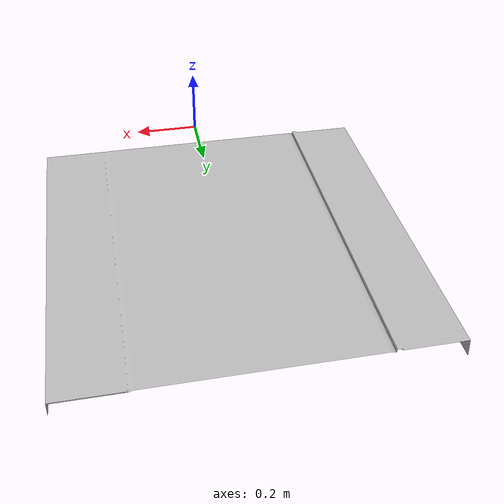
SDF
<?xml version="1.0"?>
<sdf version="1.9">
  <model name="StraightSquareOneSideOpen Road">
    <static>true</static>
    <link name="link">
      <collision name="collision">
        <geometry>
          <mesh>
            <scale>0.05 0.05 0.05</scale>
            <uri>model://Circuito/StraightSquareOneSideOpen Road/meshes/StraightSquareOneSideOpen.dae</uri>
          </mesh>
        </geometry>
      </collision>
      <visual name="road">
        <geometry>
          <mesh>
            <scale>0.05 0.05 0.05</scale>
            <uri>model://Circuito/StraightSquareOneSideOpen Road/meshes/StraightSquareOneSideOpen.dae</uri>
          </mesh>
        </geometry>
      </visual>
    </link>
  </model>
</sdf>
